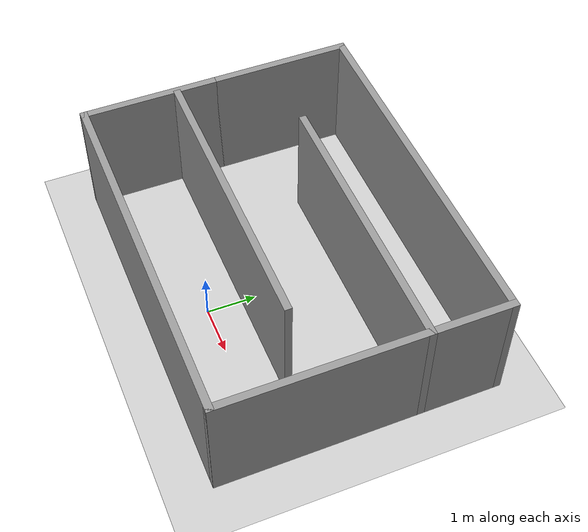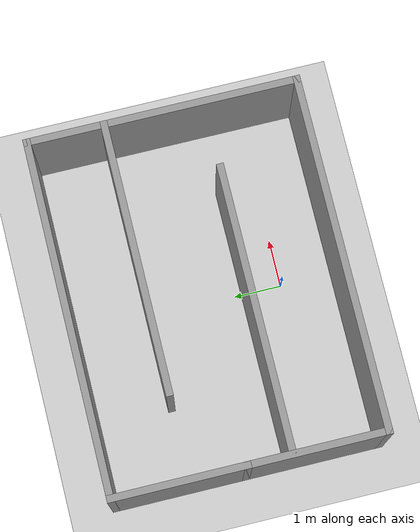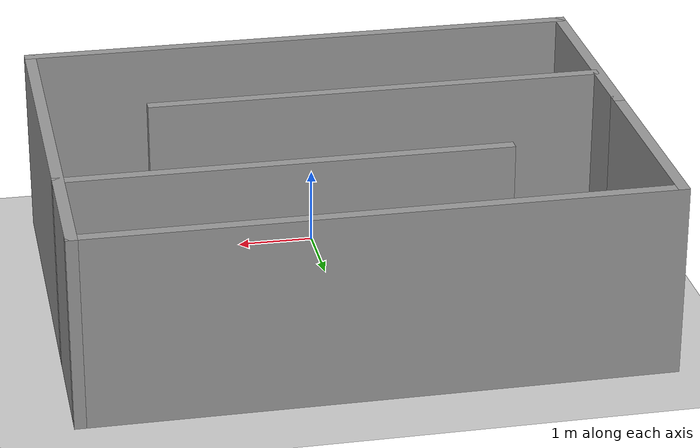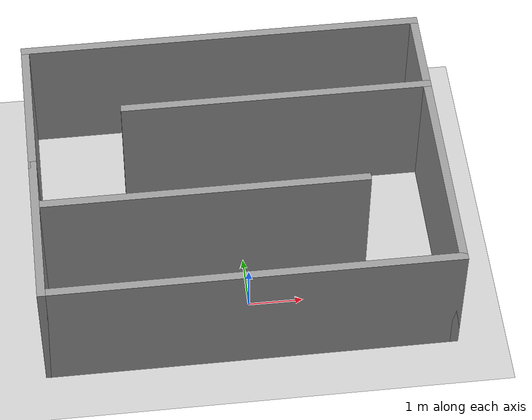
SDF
<sdf version="1.6">
 <world name="default">
  <light name="sun" type="directional">
   <pose>0 0 10 0 -0 0</pose>
   <diffuse>0.8 0.8 0.8 1</diffuse>
   <specular>0.2 0.2 0.2 1</specular>
   <attenuation>
    <range>1000</range>
    <constant>0.9</constant>
    <linear>0.01</linear>
    <quadratic>0.001</quadratic>
   </attenuation>
   <direction>-0.5 0.1 -0.9</direction>
  </light>
  <model name="ground_plane">
   <static>1</static>
   <link name="link">
    <collision name="collision">
     <geometry><plane><normal>0 0 1</normal><size>100 100</size></plane></geometry>
     <surface>
      <contact><collide_bitmask>65535</collide_bitmask></contact>
      <friction><ode><mu>100</mu><mu2>50</mu2></ode></friction>
     </surface>
    </collision>
    <visual name="visual">
     <cast_shadows>0</cast_shadows>
     <geometry><plane><normal>0 0 1</normal><size>100 100</size></plane></geometry>
     <material>
      <script><uri>file://media/materials/scripts/gazebo.material</uri><name>Gazebo/Grey</name></script>
     </material>
    </visual>
   </link>
  </model>
  <gravity>0 0 -9.8</gravity>
  <magnetic_field>6e-06 2.3e-05 -4.2e-05</magnetic_field>
  <atmosphere type="adiabatic"/>
  <physics name="default_physics" default="0" type="ode">
   <max_step_size>0.001</max_step_size>
   <real_time_factor>1</real_time_factor>
   <real_time_update_rate>1000</real_time_update_rate>
  </physics>
  <scene><ambient>0.4 0.4 0.4 1</ambient><background>0.7 0.7 0.7 1</background><shadows>1</shadows></scene>
  <spherical_coordinates>
   <surface_model>EARTH_WGS84</surface_model>
   <latitude_deg>0</latitude_deg>
   <longitude_deg>0</longitude_deg>
   <elevation>0</elevation>
   <heading_deg>0</heading_deg>
  </spherical_coordinates>
  <model name="paralel_home">
   <pose>-0.054249 1.65066 0 0 -0 0</pose>
   <link name="Wall_0">
    <collision name="Wall_0_Collision">
     <geometry><box><size>7.5 0.15 2.5</size></box></geometry>
     <pose>0 0 1.25 0 -0 0</pose>
    </collision>
    <visual name="Wall_0_Visual">
     <pose>0 0 1.25 0 -0 0</pose>
     <geometry><box><size>7.5 0.15 2.5</size></box></geometry>
     <material>
      <script><uri>file://media/materials/scripts/gazebo.material</uri><name>Gazebo/Grey</name></script>
      <ambient>1 1 1 1</ambient>
     </material>
     <meta><layer>0</layer></meta>
    </visual>
    <pose>-0.000161 -2.8 0 0 -0 0</pose>
   </link>
   <link name="Wall_16">
    <collision name="Wall_16_Collision">
     <geometry><box><size>5.75 0.15 2.5</size></box></geometry>
     <pose>0 0 1.25 0 -0 0</pose>
    </collision>
    <visual name="Wall_16_Visual">
     <pose>0 0 1.25 0 -0 0</pose>
     <geometry><box><size>5.75 0.15 2.5</size></box></geometry>
     <material>
      <script><uri>file://media/materials/scripts/gazebo.material</uri><name>Gazebo/Grey</name></script>
      <ambient>1 1 1 1</ambient>
     </material>
     <meta><layer>0</layer></meta>
    </visual>
    <pose>3.67484 0 0 0 -0 1.5708</pose>
   </link>
   <link name="Wall_17">
    <collision name="Wall_17_Collision">
     <geometry><box><size>7.5 0.15 2.5</size></box></geometry>
     <pose>0 0 1.25 0 -0 0</pose>
    </collision>
    <visual name="Wall_17_Visual">
     <pose>0 0 1.25 0 -0 0</pose>
     <geometry><box><size>7.5 0.15 2.5</size></box></geometry>
     <material>
      <script><uri>file://media/materials/scripts/gazebo.material</uri><name>Gazebo/Grey</name></script>
      <ambient>1 1 1 1</ambient>
     </material>
     <meta><layer>0</layer></meta>
    </visual>
    <pose>-0.000161 2.8 0 0 -0 3.14159</pose>
   </link>
   <link name="Wall_18">
    <collision name="Wall_18_Collision">
     <geometry><box><size>2.9 0.15 2.5</size></box></geometry>
     <pose>0 0 1.25 0 -0 0</pose>
    </collision>
    <visual name="Wall_18_Visual">
     <pose>0 0 1.25 0 -0 0</pose>
     <geometry><box><size>2.9 0.15 2.5</size></box></geometry>
     <material>
      <script><uri>file://media/materials/scripts/gazebo.material</uri><name>Gazebo/Grey</name></script>
      <ambient>1 1 1 1</ambient>
     </material>
     <meta><layer>0</layer></meta>
    </visual>
    <pose>-3.67516 1.425 0 0 0 -1.5708</pose>
   </link>
   <link name="Wall_26">
    <collision name="Wall_26_Collision">
     <geometry><box><size>6 0.15 2.5</size></box></geometry>
     <pose>0 0 1.25 0 -0 0</pose>
    </collision>
    <visual name="Wall_26_Visual">
     <pose>0 0 1.25 0 -0 0</pose>
     <geometry><box><size>6 0.15 2.5</size></box></geometry>
     <material>
      <script><uri>file://media/materials/scripts/gazebo.material</uri><name>Gazebo/Grey</name></script>
      <ambient>1 1 1 1</ambient>
     </material>
     <meta><layer>0</layer></meta>
    </visual>
    <pose>-0.667839 -0.864937 0 0 -0 0</pose>
   </link>
   <link name="Wall_29">
    <collision name="Wall_29_Collision">
     <geometry><box><size>5.75 0.15 2.5</size></box></geometry>
     <pose>0 0 1.25 0 -0 0</pose>
    </collision>
    <visual name="Wall_29_Visual">
     <pose>0 0 1.25 0 -0 0</pose>
     <geometry><box><size>5.75 0.15 2.5</size></box></geometry>
     <material>
      <script><uri>file://media/materials/scripts/gazebo.material</uri><name>Gazebo/Grey</name></script>
      <ambient>1 1 1 1</ambient>
     </material>
     <meta><layer>0</layer></meta>
    </visual>
    <pose>0.875161 1.20506 0 0 -0 3.14159</pose>
   </link>
   <link name="Wall_6">
    <collision name="Wall_6_Collision">
     <geometry><box><size>3 0.15 2.5</size></box></geometry>
     <pose>0 0 1.25 0 -0 0</pose>
    </collision>
    <visual name="Wall_6_Visual">
     <pose>0 0 1.25 0 -0 0</pose>
     <geometry><box><size>3 0.15 2.5</size></box></geometry>
     <material>
      <script><uri>file://media/materials/scripts/gazebo.material</uri><name>Gazebo/Grey</name></script>
      <ambient>1 1 1 1</ambient>
     </material>
     <meta><layer>0</layer></meta>
    </visual>
    <pose>-3.67516 -1.375 0 0 -0 1.5708</pose>
   </link>
   <static>1</static>
  </model>
 </world>
</sdf>
